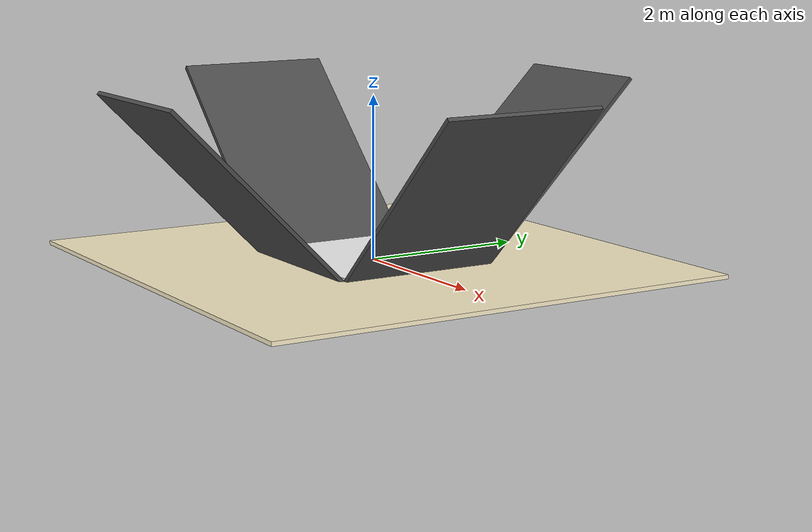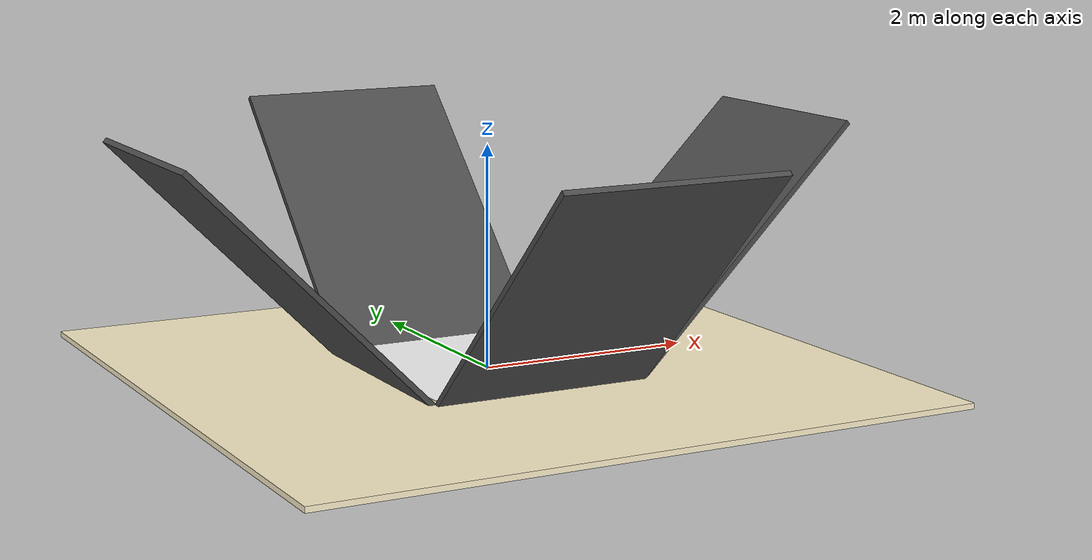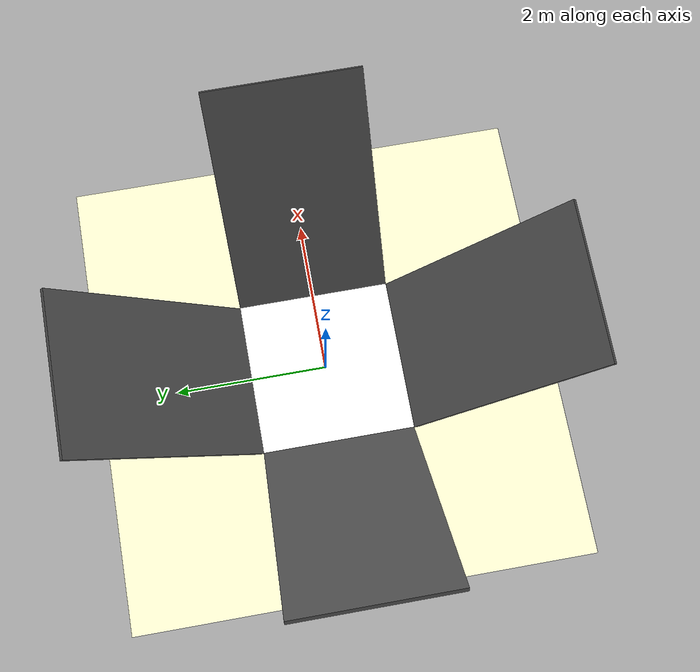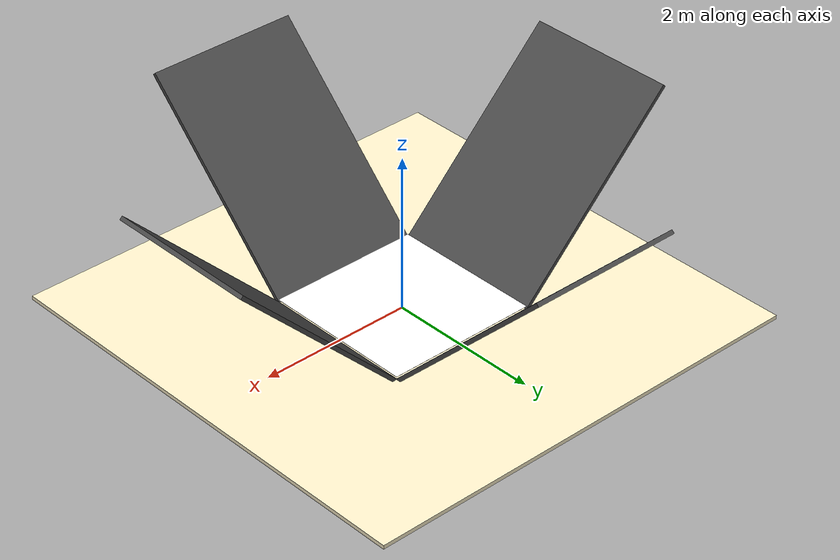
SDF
<?xml version="1.0" ?>
<sdf version="1.9">
  <model name="qr_karsiaydinlatma">
    <static>true</static>

    <!-- Zemin -->
    <link name="ground">

      <visual name="visual">
        <geometry>
          <box><size>6 6 0.05</size></box>
        </geometry>
        <material>
          <ambient>1.0 0.95 0.8 1</ambient>
          <diffuse>1.0 0.95 0.8 1</diffuse>
        </material>
      </visual>
    </link>

    <!-- QR kod 2x2m -->
    <link name="link">
      <pose>0 0 0.06 0 0 0</pose>
      <visual name="visual">
        <geometry>
          <plane>
            <normal>0 0 1</normal>
            <size>2 2</size>
          </plane>
        </geometry>
        <material>
          <diffuse>1 1 1 1</diffuse>
          <specular>0 0 0 1</specular>
          <pbr>
            <metal>
              <albedo_map>materials/textures/qr_code.png</albedo_map>
            </metal>
          </pbr>
        </material>
      </visual>
    </link>

    <!-- Kuzey plaka -->
    <link name="plate_north">
      <pose>0 2.0606 1.0606 -0.785398 0 0</pose>
      <visual name="visual">
        <geometry><box><size>2 0.05 3</size></box></geometry>
        <material><ambient>0.3 0.3 0.3 1</ambient><diffuse>0.3 0.3 0.3 1</diffuse></material>
      </visual>
    </link>

    <!-- Guney plaka -->
    <link name="plate_south">
      <pose>0 -2.0606 1.0606 0.785398 0 0</pose>
      <visual name="visual">
        <geometry><box><size>2 0.05 3</size></box></geometry>
        <material><ambient>0.3 0.3 0.3 1</ambient><diffuse>0.3 0.3 0.3 1</diffuse></material>
      </visual>
    </link>

    <!-- Dogu plaka -->
    <link name="plate_east">
      <pose>2.0606 0 1.0606 0 0.785398 0</pose>
      <visual name="visual">
        <geometry><box><size>0.05 2 3</size></box></geometry>
        <material><ambient>0.3 0.3 0.3 1</ambient><diffuse>0.3 0.3 0.3 1</diffuse></material>
      </visual>
    </link>

    <!-- Bati plaka -->
    <link name="plate_west">
      <pose>-2.0606 0 1.0606 0 -0.785398 0</pose>
      <visual name="visual">
        <geometry><box><size>0.05 2 3</size></box></geometry>
        <material><ambient>0.3 0.3 0.3 1</ambient><diffuse>0.3 0.3 0.3 1</diffuse></material>
      </visual>
    </link>

  </model>
</sdf>
